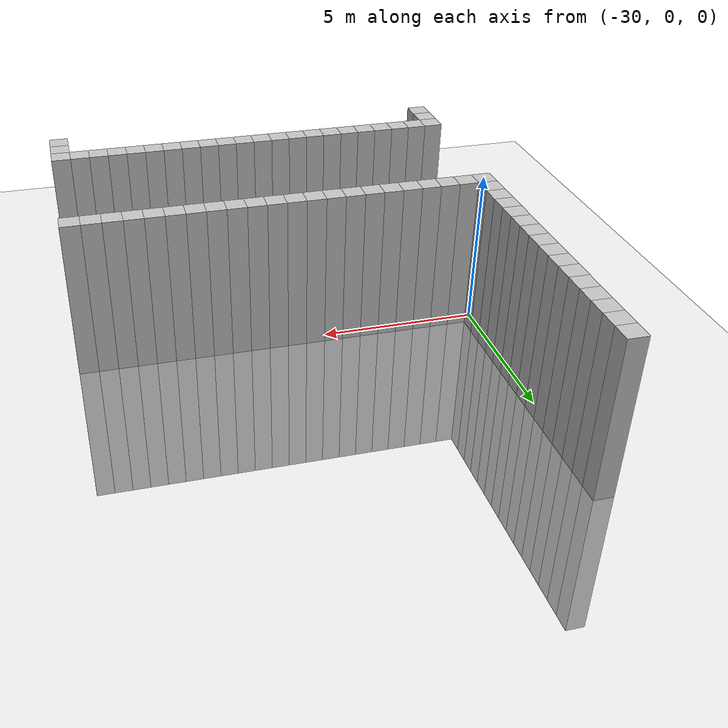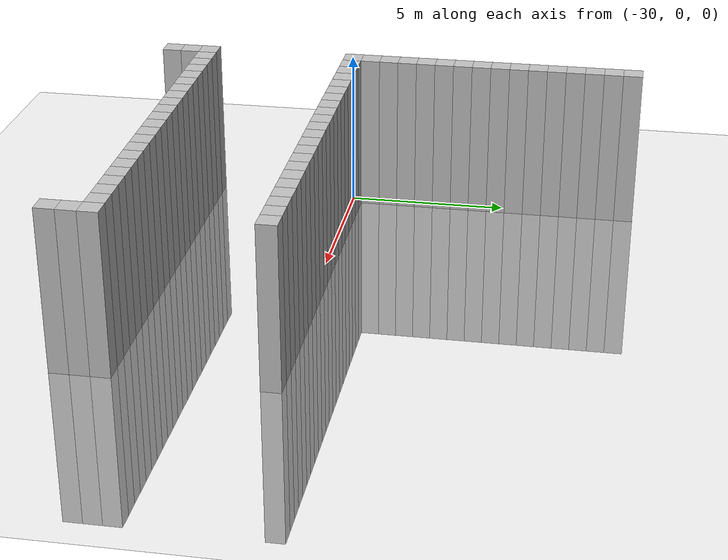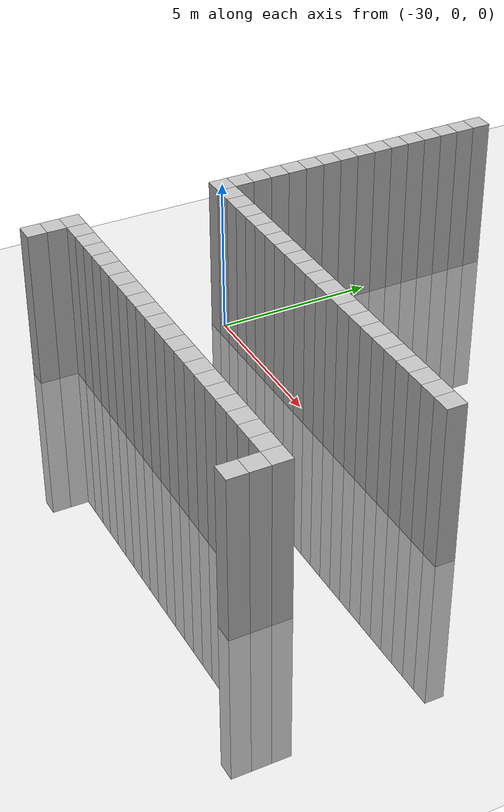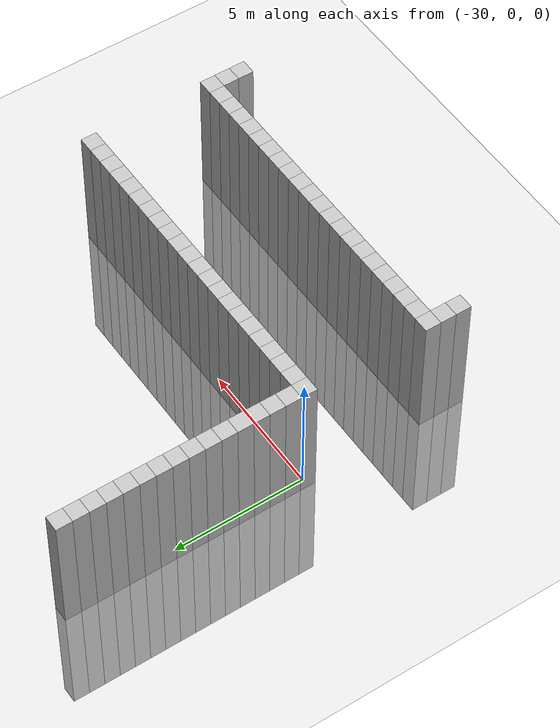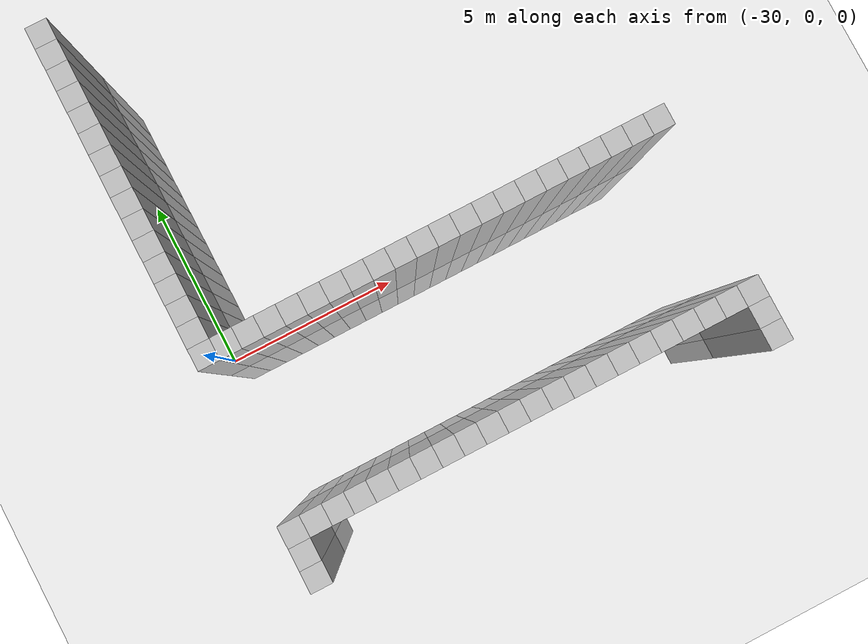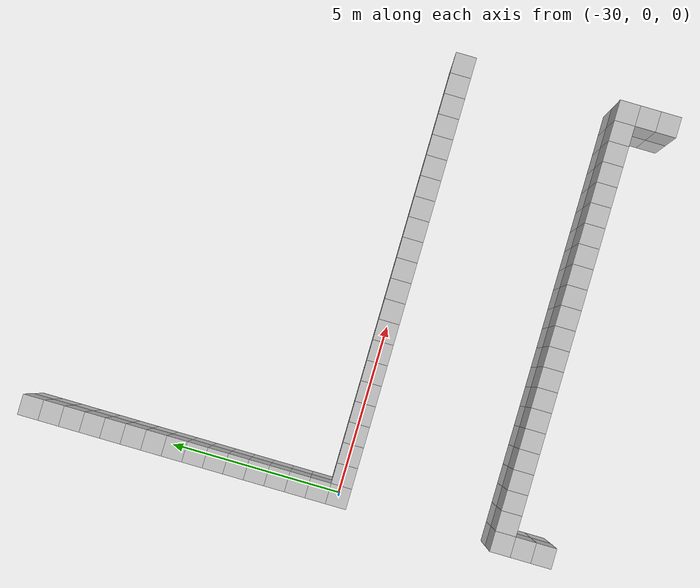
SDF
<sdf version="1.6">
 <world name="default">
  <model name="ground_plane">
   <static>1</static>
   <link name="link">
    <collision name="collision">
     <geometry><plane><normal>0 0 1</normal><size>100 100</size></plane></geometry>
     <surface><friction><ode><mu>100</mu><mu2>50</mu2></ode></friction></surface>
    </collision>
    <visual name="visual">
     <cast_shadows>0</cast_shadows>
     <geometry><plane><normal>0 0 1</normal><size>100 100</size></plane></geometry>
     <material>
      <script><uri>file://media/materials/scripts/gazebo.material</uri><name>Gazebo/Grey</name></script>
     </material>
    </visual>
   </link>
  </model>
  <model name="unit_cylinder_333">
   <static>1</static>
   <pose>-30 0 0 0 -0 0</pose>
   <link name="link">
    <inertial>
     <mass>1</mass>
     <inertia><ixx>0.145833</ixx><ixy>0</ixy><ixz>0</ixz><iyy>0.145833</iyy><iyz>0</iyz><izz>0.125</izz></inertia>
    </inertial>
    <collision name="collision"><geometry><box><size>0.6 0.6 10</size></box></geometry></collision>
    <visual name="visual">
     <geometry><box><size>0.6 0.6 10</size></box></geometry>
     <material><ambient>0.753 0.753 0.753 1</ambient><diffuse>0.753 0.753 0.753 1</diffuse></material>
     <material>
      <script><name>Gazebo/Grey</name><uri>file://media/materials/scripts/gazebo.material</uri></script>
     </material>
    </visual>
   </link>
  </model>
  <model name="unit_cylinder_334">
   <static>1</static>
   <pose>-30 0.6 0 0 -0 0</pose>
   <link name="link">
    <inertial>
     <mass>1</mass>
     <inertia><ixx>0.145833</ixx><ixy>0</ixy><ixz>0</ixz><iyy>0.145833</iyy><iyz>0</iyz><izz>0.125</izz></inertia>
    </inertial>
    <collision name="collision"><geometry><box><size>0.6 0.6 10</size></box></geometry></collision>
    <visual name="visual">
     <geometry><box><size>0.6 0.6 10</size></box></geometry>
     <material><ambient>0.753 0.753 0.753 1</ambient><diffuse>0.753 0.753 0.753 1</diffuse></material>
     <material>
      <script><name>Gazebo/Grey</name><uri>file://media/materials/scripts/gazebo.material</uri></script>
     </material>
    </visual>
   </link>
  </model>
  <model name="unit_cylinder_335">
   <static>1</static>
   <pose>-30 1.2 0 0 -0 0</pose>
   <link name="link">
    <inertial>
     <mass>1</mass>
     <inertia><ixx>0.145833</ixx><ixy>0</ixy><ixz>0</ixz><iyy>0.145833</iyy><iyz>0</iyz><izz>0.125</izz></inertia>
    </inertial>
    <collision name="collision"><geometry><box><size>0.6 0.6 10</size></box></geometry></collision>
    <visual name="visual">
     <geometry><box><size>0.6 0.6 10</size></box></geometry>
     <material><ambient>0.753 0.753 0.753 1</ambient><diffuse>0.753 0.753 0.753 1</diffuse></material>
     <material>
      <script><name>Gazebo/Grey</name><uri>file://media/materials/scripts/gazebo.material</uri></script>
     </material>
    </visual>
   </link>
  </model>
  <model name="unit_cylinder_336">
   <static>1</static>
   <pose>-30 1.8 0 0 -0 0</pose>
   <link name="link">
    <inertial>
     <mass>1</mass>
     <inertia><ixx>0.145833</ixx><ixy>0</ixy><ixz>0</ixz><iyy>0.145833</iyy><iyz>0</iyz><izz>0.125</izz></inertia>
    </inertial>
    <collision name="collision"><geometry><box><size>0.6 0.6 10</size></box></geometry></collision>
    <visual name="visual">
     <geometry><box><size>0.6 0.6 10</size></box></geometry>
     <material><ambient>0.753 0.753 0.753 1</ambient><diffuse>0.753 0.753 0.753 1</diffuse></material>
     <material>
      <script><name>Gazebo/Grey</name><uri>file://media/materials/scripts/gazebo.material</uri></script>
     </material>
    </visual>
   </link>
  </model>
  <model name="unit_cylinder_337">
   <static>1</static>
   <pose>-30 2.4 0 0 -0 0</pose>
   <link name="link">
    <inertial>
     <mass>1</mass>
     <inertia><ixx>0.145833</ixx><ixy>0</ixy><ixz>0</ixz><iyy>0.145833</iyy><iyz>0</iyz><izz>0.125</izz></inertia>
    </inertial>
    <collision name="collision"><geometry><box><size>0.6 0.6 10</size></box></geometry></collision>
    <visual name="visual">
     <geometry><box><size>0.6 0.6 10</size></box></geometry>
     <material><ambient>0.753 0.753 0.753 1</ambient><diffuse>0.753 0.753 0.753 1</diffuse></material>
     <material>
      <script><name>Gazebo/Grey</name><uri>file://media/materials/scripts/gazebo.material</uri></script>
     </material>
    </visual>
   </link>
  </model>
  <model name="unit_cylinder_338">
   <static>1</static>
   <pose>-30 3 0 0 -0 0</pose>
   <link name="link">
    <inertial>
     <mass>1</mass>
     <inertia><ixx>0.145833</ixx><ixy>0</ixy><ixz>0</ixz><iyy>0.145833</iyy><iyz>0</iyz><izz>0.125</izz></inertia>
    </inertial>
    <collision name="collision"><geometry><box><size>0.6 0.6 10</size></box></geometry></collision>
    <visual name="visual">
     <geometry><box><size>0.6 0.6 10</size></box></geometry>
     <material><ambient>0.753 0.753 0.753 1</ambient><diffuse>0.753 0.753 0.753 1</diffuse></material>
     <material>
      <script><name>Gazebo/Grey</name><uri>file://media/materials/scripts/gazebo.material</uri></script>
     </material>
    </visual>
   </link>
  </model>
  <model name="unit_cylinder_339">
   <static>1</static>
   <pose>-30 3.6 0 0 -0 0</pose>
   <link name="link">
    <inertial>
     <mass>1</mass>
     <inertia><ixx>0.145833</ixx><ixy>0</ixy><ixz>0</ixz><iyy>0.145833</iyy><iyz>0</iyz><izz>0.125</izz></inertia>
    </inertial>
    <collision name="collision"><geometry><box><size>0.6 0.6 10</size></box></geometry></collision>
    <visual name="visual">
     <geometry><box><size>0.6 0.6 10</size></box></geometry>
     <material><ambient>0.753 0.753 0.753 1</ambient><diffuse>0.753 0.753 0.753 1</diffuse></material>
     <material>
      <script><name>Gazebo/Grey</name><uri>file://media/materials/scripts/gazebo.material</uri></script>
     </material>
    </visual>
   </link>
  </model>
  <model name="unit_cylinder_340">
   <static>1</static>
   <pose>-30 4.2 0 0 -0 0</pose>
   <link name="link">
    <inertial>
     <mass>1</mass>
     <inertia><ixx>0.145833</ixx><ixy>0</ixy><ixz>0</ixz><iyy>0.145833</iyy><iyz>0</iyz><izz>0.125</izz></inertia>
    </inertial>
    <collision name="collision"><geometry><box><size>0.6 0.6 10</size></box></geometry></collision>
    <visual name="visual">
     <geometry><box><size>0.6 0.6 10</size></box></geometry>
     <material><ambient>0.753 0.753 0.753 1</ambient><diffuse>0.753 0.753 0.753 1</diffuse></material>
     <material>
      <script><name>Gazebo/Grey</name><uri>file://media/materials/scripts/gazebo.material</uri></script>
     </material>
    </visual>
   </link>
  </model>
  <model name="unit_cylinder_341">
   <static>1</static>
   <pose>-30 4.8 0 0 -0 0</pose>
   <link name="link">
    <inertial>
     <mass>1</mass>
     <inertia><ixx>0.145833</ixx><ixy>0</ixy><ixz>0</ixz><iyy>0.145833</iyy><iyz>0</iyz><izz>0.125</izz></inertia>
    </inertial>
    <collision name="collision"><geometry><box><size>0.6 0.6 10</size></box></geometry></collision>
    <visual name="visual">
     <geometry><box><size>0.6 0.6 10</size></box></geometry>
     <material><ambient>0.753 0.753 0.753 1</ambient><diffuse>0.753 0.753 0.753 1</diffuse></material>
     <material>
      <script><name>Gazebo/Grey</name><uri>file://media/materials/scripts/gazebo.material</uri></script>
     </material>
    </visual>
   </link>
  </model>
  <model name="unit_cylinder_342">
   <static>1</static>
   <pose>-30 5.4 0 0 -0 0</pose>
   <link name="link">
    <inertial>
     <mass>1</mass>
     <inertia><ixx>0.145833</ixx><ixy>0</ixy><ixz>0</ixz><iyy>0.145833</iyy><iyz>0</iyz><izz>0.125</izz></inertia>
    </inertial>
    <collision name="collision"><geometry><box><size>0.6 0.6 10</size></box></geometry></collision>
    <visual name="visual">
     <geometry><box><size>0.6 0.6 10</size></box></geometry>
     <material><ambient>0.753 0.753 0.753 1</ambient><diffuse>0.753 0.753 0.753 1</diffuse></material>
     <material>
      <script><name>Gazebo/Grey</name><uri>file://media/materials/scripts/gazebo.material</uri></script>
     </material>
    </visual>
   </link>
  </model>
  <model name="unit_cylinder_343">
   <static>1</static>
   <pose>-30 6 0 0 -0 0</pose>
   <link name="link">
    <inertial>
     <mass>1</mass>
     <inertia><ixx>0.145833</ixx><ixy>0</ixy><ixz>0</ixz><iyy>0.145833</iyy><iyz>0</iyz><izz>0.125</izz></inertia>
    </inertial>
    <collision name="collision"><geometry><box><size>0.6 0.6 10</size></box></geometry></collision>
    <visual name="visual">
     <geometry><box><size>0.6 0.6 10</size></box></geometry>
     <material><ambient>0.753 0.753 0.753 1</ambient><diffuse>0.753 0.753 0.753 1</diffuse></material>
     <material>
      <script><name>Gazebo/Grey</name><uri>file://media/materials/scripts/gazebo.material</uri></script>
     </material>
    </visual>
   </link>
  </model>
  <model name="unit_cylinder_344">
   <static>1</static>
   <pose>-30 6.6 0 0 -0 0</pose>
   <link name="link">
    <inertial>
     <mass>1</mass>
     <inertia><ixx>0.145833</ixx><ixy>0</ixy><ixz>0</ixz><iyy>0.145833</iyy><iyz>0</iyz><izz>0.125</izz></inertia>
    </inertial>
    <collision name="collision"><geometry><box><size>0.6 0.6 10</size></box></geometry></collision>
    <visual name="visual">
     <geometry><box><size>0.6 0.6 10</size></box></geometry>
     <material><ambient>0.753 0.753 0.753 1</ambient><diffuse>0.753 0.753 0.753 1</diffuse></material>
     <material>
      <script><name>Gazebo/Grey</name><uri>file://media/materials/scripts/gazebo.material</uri></script>
     </material>
    </visual>
   </link>
  </model>
  <model name="unit_cylinder_345">
   <static>1</static>
   <pose>-30 7.2 0 0 -0 0</pose>
   <link name="link">
    <inertial>
     <mass>1</mass>
     <inertia><ixx>0.145833</ixx><ixy>0</ixy><ixz>0</ixz><iyy>0.145833</iyy><iyz>0</iyz><izz>0.125</izz></inertia>
    </inertial>
    <collision name="collision"><geometry><box><size>0.6 0.6 10</size></box></geometry></collision>
    <visual name="visual">
     <geometry><box><size>0.6 0.6 10</size></box></geometry>
     <material><ambient>0.753 0.753 0.753 1</ambient><diffuse>0.753 0.753 0.753 1</diffuse></material>
     <material>
      <script><name>Gazebo/Grey</name><uri>file://media/materials/scripts/gazebo.material</uri></script>
     </material>
    </visual>
   </link>
  </model>
  <model name="unit_cylinder_346">
   <static>1</static>
   <pose>-30 7.8 0 0 -0 0</pose>
   <link name="link">
    <inertial>
     <mass>1</mass>
     <inertia><ixx>0.145833</ixx><ixy>0</ixy><ixz>0</ixz><iyy>0.145833</iyy><iyz>0</iyz><izz>0.125</izz></inertia>
    </inertial>
    <collision name="collision"><geometry><box><size>0.6 0.6 10</size></box></geometry></collision>
    <visual name="visual">
     <geometry><box><size>0.6 0.6 10</size></box></geometry>
     <material><ambient>0.753 0.753 0.753 1</ambient><diffuse>0.753 0.753 0.753 1</diffuse></material>
     <material>
      <script><name>Gazebo/Grey</name><uri>file://media/materials/scripts/gazebo.material</uri></script>
     </material>
    </visual>
   </link>
  </model>
  <model name="unit_cylinder_347">
   <static>1</static>
   <pose>-30 8.4 0 0 -0 0</pose>
   <link name="link">
    <inertial>
     <mass>1</mass>
     <inertia><ixx>0.145833</ixx><ixy>0</ixy><ixz>0</ixz><iyy>0.145833</iyy><iyz>0</iyz><izz>0.125</izz></inertia>
    </inertial>
    <collision name="collision"><geometry><box><size>0.6 0.6 10</size></box></geometry></collision>
    <visual name="visual">
     <geometry><box><size>0.6 0.6 10</size></box></geometry>
     <material><ambient>0.753 0.753 0.753 1</ambient><diffuse>0.753 0.753 0.753 1</diffuse></material>
     <material>
      <script><name>Gazebo/Grey</name><uri>file://media/materials/scripts/gazebo.material</uri></script>
     </material>
    </visual>
   </link>
  </model>
  <model name="unit_cylinder_348">
   <static>1</static>
   <pose>-30 9 0 0 -0 0</pose>
   <link name="link">
    <inertial>
     <mass>1</mass>
     <inertia><ixx>0.145833</ixx><ixy>0</ixy><ixz>0</ixz><iyy>0.145833</iyy><iyz>0</iyz><izz>0.125</izz></inertia>
    </inertial>
    <collision name="collision"><geometry><box><size>0.6 0.6 10</size></box></geometry></collision>
    <visual name="visual">
     <geometry><box><size>0.6 0.6 10</size></box></geometry>
     <material><ambient>0.753 0.753 0.753 1</ambient><diffuse>0.753 0.753 0.753 1</diffuse></material>
     <material>
      <script><name>Gazebo/Grey</name><uri>file://media/materials/scripts/gazebo.material</uri></script>
     </material>
    </visual>
   </link>
  </model>
  <model name="unit_cylinder_397">
   <static>1</static>
   <pose>-29.4 0 0 0 -0 0</pose>
   <link name="link">
    <inertial>
     <mass>1</mass>
     <inertia><ixx>0.145833</ixx><ixy>0</ixy><ixz>0</ixz><iyy>0.145833</iyy><iyz>0</iyz><izz>0.125</izz></inertia>
    </inertial>
    <collision name="collision"><geometry><box><size>0.6 0.6 10</size></box></geometry></collision>
    <visual name="visual">
     <geometry><box><size>0.6 0.6 10</size></box></geometry>
     <material><ambient>0.753 0.753 0.753 1</ambient><diffuse>0.753 0.753 0.753 1</diffuse></material>
     <material>
      <script><name>Gazebo/Grey</name><uri>file://media/materials/scripts/gazebo.material</uri></script>
     </material>
    </visual>
   </link>
  </model>
  <model name="unit_cylinder_401">
   <static>1</static>
   <pose>-28.8 0 0 0 -0 0</pose>
   <link name="link">
    <inertial>
     <mass>1</mass>
     <inertia><ixx>0.145833</ixx><ixy>0</ixy><ixz>0</ixz><iyy>0.145833</iyy><iyz>0</iyz><izz>0.125</izz></inertia>
    </inertial>
    <collision name="collision"><geometry><box><size>0.6 0.6 10</size></box></geometry></collision>
    <visual name="visual">
     <geometry><box><size>0.6 0.6 10</size></box></geometry>
     <material><ambient>0.753 0.753 0.753 1</ambient><diffuse>0.753 0.753 0.753 1</diffuse></material>
     <material>
      <script><name>Gazebo/Grey</name><uri>file://media/materials/scripts/gazebo.material</uri></script>
     </material>
    </visual>
   </link>
  </model>
  <model name="unit_cylinder_405">
   <static>1</static>
   <pose>-28.2 0 0 0 -0 0</pose>
   <link name="link">
    <inertial>
     <mass>1</mass>
     <inertia><ixx>0.145833</ixx><ixy>0</ixy><ixz>0</ixz><iyy>0.145833</iyy><iyz>0</iyz><izz>0.125</izz></inertia>
    </inertial>
    <collision name="collision"><geometry><box><size>0.6 0.6 10</size></box></geometry></collision>
    <visual name="visual">
     <geometry><box><size>0.6 0.6 10</size></box></geometry>
     <material><ambient>0.753 0.753 0.753 1</ambient><diffuse>0.753 0.753 0.753 1</diffuse></material>
     <material>
      <script><name>Gazebo/Grey</name><uri>file://media/materials/scripts/gazebo.material</uri></script>
     </material>
    </visual>
   </link>
  </model>
  <model name="unit_cylinder_409">
   <static>1</static>
   <pose>-27.6 0 0 0 -0 0</pose>
   <link name="link">
    <inertial>
     <mass>1</mass>
     <inertia><ixx>0.145833</ixx><ixy>0</ixy><ixz>0</ixz><iyy>0.145833</iyy><iyz>0</iyz><izz>0.125</izz></inertia>
    </inertial>
    <collision name="collision"><geometry><box><size>0.6 0.6 10</size></box></geometry></collision>
    <visual name="visual">
     <geometry><box><size>0.6 0.6 10</size></box></geometry>
     <material><ambient>0.753 0.753 0.753 1</ambient><diffuse>0.753 0.753 0.753 1</diffuse></material>
     <material>
      <script><name>Gazebo/Grey</name><uri>file://media/materials/scripts/gazebo.material</uri></script>
     </material>
    </visual>
   </link>
  </model>
  <model name="unit_cylinder_413">
   <static>1</static>
   <pose>-27 0 0 0 -0 0</pose>
   <link name="link">
    <inertial>
     <mass>1</mass>
     <inertia><ixx>0.145833</ixx><ixy>0</ixy><ixz>0</ixz><iyy>0.145833</iyy><iyz>0</iyz><izz>0.125</izz></inertia>
    </inertial>
    <collision name="collision"><geometry><box><size>0.6 0.6 10</size></box></geometry></collision>
    <visual name="visual">
     <geometry><box><size>0.6 0.6 10</size></box></geometry>
     <material><ambient>0.753 0.753 0.753 1</ambient><diffuse>0.753 0.753 0.753 1</diffuse></material>
     <material>
      <script><name>Gazebo/Grey</name><uri>file://media/materials/scripts/gazebo.material</uri></script>
     </material>
    </visual>
   </link>
  </model>
  <model name="unit_cylinder_417">
   <static>1</static>
   <pose>-26.4 0 0 0 -0 0</pose>
   <link name="link">
    <inertial>
     <mass>1</mass>
     <inertia><ixx>0.145833</ixx><ixy>0</ixy><ixz>0</ixz><iyy>0.145833</iyy><iyz>0</iyz><izz>0.125</izz></inertia>
    </inertial>
    <collision name="collision"><geometry><box><size>0.6 0.6 10</size></box></geometry></collision>
    <visual name="visual">
     <geometry><box><size>0.6 0.6 10</size></box></geometry>
     <material><ambient>0.753 0.753 0.753 1</ambient><diffuse>0.753 0.753 0.753 1</diffuse></material>
     <material>
      <script><name>Gazebo/Grey</name><uri>file://media/materials/scripts/gazebo.material</uri></script>
     </material>
    </visual>
   </link>
  </model>
  <model name="unit_cylinder_421">
   <static>1</static>
   <pose>-25.8 0 0 0 -0 0</pose>
   <link name="link">
    <inertial>
     <mass>1</mass>
     <inertia><ixx>0.145833</ixx><ixy>0</ixy><ixz>0</ixz><iyy>0.145833</iyy><iyz>0</iyz><izz>0.125</izz></inertia>
    </inertial>
    <collision name="collision"><geometry><box><size>0.6 0.6 10</size></box></geometry></collision>
    <visual name="visual">
     <geometry><box><size>0.6 0.6 10</size></box></geometry>
     <material><ambient>0.753 0.753 0.753 1</ambient><diffuse>0.753 0.753 0.753 1</diffuse></material>
     <material>
      <script><name>Gazebo/Grey</name><uri>file://media/materials/scripts/gazebo.material</uri></script>
     </material>
    </visual>
   </link>
  </model>
  <model name="unit_cylinder_425">
   <static>1</static>
   <pose>-25.2 0 0 0 -0 0</pose>
   <link name="link">
    <inertial>
     <mass>1</mass>
     <inertia><ixx>0.145833</ixx><ixy>0</ixy><ixz>0</ixz><iyy>0.145833</iyy><iyz>0</iyz><izz>0.125</izz></inertia>
    </inertial>
    <collision name="collision"><geometry><box><size>0.6 0.6 10</size></box></geometry></collision>
    <visual name="visual">
     <geometry><box><size>0.6 0.6 10</size></box></geometry>
     <material><ambient>0.753 0.753 0.753 1</ambient><diffuse>0.753 0.753 0.753 1</diffuse></material>
     <material>
      <script><name>Gazebo/Grey</name><uri>file://media/materials/scripts/gazebo.material</uri></script>
     </material>
    </visual>
   </link>
  </model>
  <model name="unit_cylinder_429">
   <static>1</static>
   <pose>-24.6 0 0 0 -0 0</pose>
   <link name="link">
    <inertial>
     <mass>1</mass>
     <inertia><ixx>0.145833</ixx><ixy>0</ixy><ixz>0</ixz><iyy>0.145833</iyy><iyz>0</iyz><izz>0.125</izz></inertia>
    </inertial>
    <collision name="collision"><geometry><box><size>0.6 0.6 10</size></box></geometry></collision>
    <visual name="visual">
     <geometry><box><size>0.6 0.6 10</size></box></geometry>
     <material><ambient>0.753 0.753 0.753 1</ambient><diffuse>0.753 0.753 0.753 1</diffuse></material>
     <material>
      <script><name>Gazebo/Grey</name><uri>file://media/materials/scripts/gazebo.material</uri></script>
     </material>
    </visual>
   </link>
  </model>
  <model name="unit_cylinder_433">
   <static>1</static>
   <pose>-24 0 0 0 -0 0</pose>
   <link name="link">
    <inertial>
     <mass>1</mass>
     <inertia><ixx>0.145833</ixx><ixy>0</ixy><ixz>0</ixz><iyy>0.145833</iyy><iyz>0</iyz><izz>0.125</izz></inertia>
    </inertial>
    <collision name="collision"><geometry><box><size>0.6 0.6 10</size></box></geometry></collision>
    <visual name="visual">
     <geometry><box><size>0.6 0.6 10</size></box></geometry>
     <material><ambient>0.753 0.753 0.753 1</ambient><diffuse>0.753 0.753 0.753 1</diffuse></material>
     <material>
      <script><name>Gazebo/Grey</name><uri>file://media/materials/scripts/gazebo.material</uri></script>
     </material>
    </visual>
   </link>
  </model>
  <model name="unit_cylinder_437">
   <static>1</static>
   <pose>-23.4 0 0 0 -0 0</pose>
   <link name="link">
    <inertial>
     <mass>1</mass>
     <inertia><ixx>0.145833</ixx><ixy>0</ixy><ixz>0</ixz><iyy>0.145833</iyy><iyz>0</iyz><izz>0.125</izz></inertia>
    </inertial>
    <collision name="collision"><geometry><box><size>0.6 0.6 10</size></box></geometry></collision>
    <visual name="visual">
     <geometry><box><size>0.6 0.6 10</size></box></geometry>
     <material><ambient>0.753 0.753 0.753 1</ambient><diffuse>0.753 0.753 0.753 1</diffuse></material>
     <material>
      <script><name>Gazebo/Grey</name><uri>file://media/materials/scripts/gazebo.material</uri></script>
     </material>
    </visual>
   </link>
  </model>
  <model name="unit_cylinder_441">
   <static>1</static>
   <pose>-22.8 0 0 0 -0 0</pose>
   <link name="link">
    <inertial>
     <mass>1</mass>
     <inertia><ixx>0.145833</ixx><ixy>0</ixy><ixz>0</ixz><iyy>0.145833</iyy><iyz>0</iyz><izz>0.125</izz></inertia>
    </inertial>
    <collision name="collision"><geometry><box><size>0.6 0.6 10</size></box></geometry></collision>
    <visual name="visual">
     <geometry><box><size>0.6 0.6 10</size></box></geometry>
     <material><ambient>0.753 0.753 0.753 1</ambient><diffuse>0.753 0.753 0.753 1</diffuse></material>
     <material>
      <script><name>Gazebo/Grey</name><uri>file://media/materials/scripts/gazebo.material</uri></script>
     </material>
    </visual>
   </link>
  </model>
  <model name="unit_cylinder_445">
   <static>1</static>
   <pose>-22.2 0 0 0 -0 0</pose>
   <link name="link">
    <inertial>
     <mass>1</mass>
     <inertia><ixx>0.145833</ixx><ixy>0</ixy><ixz>0</ixz><iyy>0.145833</iyy><iyz>0</iyz><izz>0.125</izz></inertia>
    </inertial>
    <collision name="collision"><geometry><box><size>0.6 0.6 10</size></box></geometry></collision>
    <visual name="visual">
     <geometry><box><size>0.6 0.6 10</size></box></geometry>
     <material><ambient>0.753 0.753 0.753 1</ambient><diffuse>0.753 0.753 0.753 1</diffuse></material>
     <material>
      <script><name>Gazebo/Grey</name><uri>file://media/materials/scripts/gazebo.material</uri></script>
     </material>
    </visual>
   </link>
  </model>
  <model name="unit_cylinder_449">
   <static>1</static>
   <pose>-21.6 0 0 0 -0 0</pose>
   <link name="link">
    <inertial>
     <mass>1</mass>
     <inertia><ixx>0.145833</ixx><ixy>0</ixy><ixz>0</ixz><iyy>0.145833</iyy><iyz>0</iyz><izz>0.125</izz></inertia>
    </inertial>
    <collision name="collision"><geometry><box><size>0.6 0.6 10</size></box></geometry></collision>
    <visual name="visual">
     <geometry><box><size>0.6 0.6 10</size></box></geometry>
     <material><ambient>0.753 0.753 0.753 1</ambient><diffuse>0.753 0.753 0.753 1</diffuse></material>
     <material>
      <script><name>Gazebo/Grey</name><uri>file://media/materials/scripts/gazebo.material</uri></script>
     </material>
    </visual>
   </link>
  </model>
  <model name="unit_cylinder_453">
   <static>1</static>
   <pose>-21 0 0 0 -0 0</pose>
   <link name="link">
    <inertial>
     <mass>1</mass>
     <inertia><ixx>0.145833</ixx><ixy>0</ixy><ixz>0</ixz><iyy>0.145833</iyy><iyz>0</iyz><izz>0.125</izz></inertia>
    </inertial>
    <collision name="collision"><geometry><box><size>0.6 0.6 10</size></box></geometry></collision>
    <visual name="visual">
     <geometry><box><size>0.6 0.6 10</size></box></geometry>
     <material><ambient>0.753 0.753 0.753 1</ambient><diffuse>0.753 0.753 0.753 1</diffuse></material>
     <material>
      <script><name>Gazebo/Grey</name><uri>file://media/materials/scripts/gazebo.material</uri></script>
     </material>
    </visual>
   </link>
  </model>
  <model name="unit_cylinder_457">
   <static>1</static>
   <pose>-20.4 0 0 0 -0 0</pose>
   <link name="link">
    <inertial>
     <mass>1</mass>
     <inertia><ixx>0.145833</ixx><ixy>0</ixy><ixz>0</ixz><iyy>0.145833</iyy><iyz>0</iyz><izz>0.125</izz></inertia>
    </inertial>
    <collision name="collision"><geometry><box><size>0.6 0.6 10</size></box></geometry></collision>
    <visual name="visual">
     <geometry><box><size>0.6 0.6 10</size></box></geometry>
     <material><ambient>0.753 0.753 0.753 1</ambient><diffuse>0.753 0.753 0.753 1</diffuse></material>
     <material>
      <script><name>Gazebo/Grey</name><uri>file://media/materials/scripts/gazebo.material</uri></script>
     </material>
    </visual>
   </link>
  </model>
  <model name="unit_cylinder_461">
   <static>1</static>
   <pose>-19.8 0 0 0 -0 0</pose>
   <link name="link">
    <inertial>
     <mass>1</mass>
     <inertia><ixx>0.145833</ixx><ixy>0</ixy><ixz>0</ixz><iyy>0.145833</iyy><iyz>0</iyz><izz>0.125</izz></inertia>
    </inertial>
    <collision name="collision"><geometry><box><size>0.6 0.6 10</size></box></geometry></collision>
    <visual name="visual">
     <geometry><box><size>0.6 0.6 10</size></box></geometry>
     <material><ambient>0.753 0.753 0.753 1</ambient><diffuse>0.753 0.753 0.753 1</diffuse></material>
     <material>
      <script><name>Gazebo/Grey</name><uri>file://media/materials/scripts/gazebo.material</uri></script>
     </material>
    </visual>
   </link>
  </model>
  <model name="unit_cylinder_465">
   <static>1</static>
   <pose>-19.2 0 0 0 -0 0</pose>
   <link name="link">
    <inertial>
     <mass>1</mass>
     <inertia><ixx>0.145833</ixx><ixy>0</ixy><ixz>0</ixz><iyy>0.145833</iyy><iyz>0</iyz><izz>0.125</izz></inertia>
    </inertial>
    <collision name="collision"><geometry><box><size>0.6 0.6 10</size></box></geometry></collision>
    <visual name="visual">
     <geometry><box><size>0.6 0.6 10</size></box></geometry>
     <material><ambient>0.753 0.753 0.753 1</ambient><diffuse>0.753 0.753 0.753 1</diffuse></material>
     <material>
      <script><name>Gazebo/Grey</name><uri>file://media/materials/scripts/gazebo.material</uri></script>
     </material>
    </visual>
   </link>
  </model>
  <model name="unit_cylinder_469">
   <static>1</static>
   <pose>-18.6 0 0 0 -0 0</pose>
   <link name="link">
    <inertial>
     <mass>1</mass>
     <inertia><ixx>0.145833</ixx><ixy>0</ixy><ixz>0</ixz><iyy>0.145833</iyy><iyz>0</iyz><izz>0.125</izz></inertia>
    </inertial>
    <collision name="collision"><geometry><box><size>0.6 0.6 10</size></box></geometry></collision>
    <visual name="visual">
     <geometry><box><size>0.6 0.6 10</size></box></geometry>
     <material><ambient>0.753 0.753 0.753 1</ambient><diffuse>0.753 0.753 0.753 1</diffuse></material>
     <material>
      <script><name>Gazebo/Grey</name><uri>file://media/materials/scripts/gazebo.material</uri></script>
     </material>
    </visual>
   </link>
  </model>
  <model name="unit_cylinder_473">
   <static>1</static>
   <pose>-18 0 0 0 -0 0</pose>
   <link name="link">
    <inertial>
     <mass>1</mass>
     <inertia><ixx>0.145833</ixx><ixy>0</ixy><ixz>0</ixz><iyy>0.145833</iyy><iyz>0</iyz><izz>0.125</izz></inertia>
    </inertial>
    <collision name="collision"><geometry><box><size>0.6 0.6 10</size></box></geometry></collision>
    <visual name="visual">
     <geometry><box><size>0.6 0.6 10</size></box></geometry>
     <material><ambient>0.753 0.753 0.753 1</ambient><diffuse>0.753 0.753 0.753 1</diffuse></material>
     <material>
      <script><name>Gazebo/Grey</name><uri>file://media/materials/scripts/gazebo.material</uri></script>
     </material>
    </visual>
   </link>
  </model>
  <model name="unit_cylinder_477">
   <static>1</static>
   <pose>-17.4 0 0 0 -0 0</pose>
   <link name="link">
    <inertial>
     <mass>1</mass>
     <inertia><ixx>0.145833</ixx><ixy>0</ixy><ixz>0</ixz><iyy>0.145833</iyy><iyz>0</iyz><izz>0.125</izz></inertia>
    </inertial>
    <collision name="collision"><geometry><box><size>0.6 0.6 10</size></box></geometry></collision>
    <visual name="visual">
     <geometry><box><size>0.6 0.6 10</size></box></geometry>
     <material><ambient>0.753 0.753 0.753 1</ambient><diffuse>0.753 0.753 0.753 1</diffuse></material>
     <material>
      <script><name>Gazebo/Grey</name><uri>file://media/materials/scripts/gazebo.material</uri></script>
     </material>
    </visual>
   </link>
  </model>
  <model name="unit_cylinder_581">
   <static>1</static>
   <pose>-30 -6 0 0 -0 0</pose>
   <link name="link">
    <inertial>
     <mass>1</mass>
     <inertia><ixx>0.145833</ixx><ixy>0</ixy><ixz>0</ixz><iyy>0.145833</iyy><iyz>0</iyz><izz>0.125</izz></inertia>
    </inertial>
    <collision name="collision"><geometry><box><size>0.6 0.6 10</size></box></geometry></collision>
    <visual name="visual">
     <geometry><box><size>0.6 0.6 10</size></box></geometry>
     <material><ambient>0.753 0.753 0.753 1</ambient><diffuse>0.753 0.753 0.753 1</diffuse></material>
     <material>
      <script><name>Gazebo/Grey</name><uri>file://media/materials/scripts/gazebo.material</uri></script>
     </material>
    </visual>
   </link>
  </model>
  <model name="unit_cylinder_582">
   <static>1</static>
   <pose>-30 -5.4 0 0 -0 0</pose>
   <link name="link">
    <inertial>
     <mass>1</mass>
     <inertia><ixx>0.145833</ixx><ixy>0</ixy><ixz>0</ixz><iyy>0.145833</iyy><iyz>0</iyz><izz>0.125</izz></inertia>
    </inertial>
    <collision name="collision"><geometry><box><size>0.6 0.6 10</size></box></geometry></collision>
    <visual name="visual">
     <geometry><box><size>0.6 0.6 10</size></box></geometry>
     <material><ambient>0.753 0.753 0.753 1</ambient><diffuse>0.753 0.753 0.753 1</diffuse></material>
     <material>
      <script><name>Gazebo/Grey</name><uri>file://media/materials/scripts/gazebo.material</uri></script>
     </material>
    </visual>
   </link>
  </model>
  <model name="unit_cylinder_583">
   <static>1</static>
   <pose>-30 -4.8 0 0 -0 0</pose>
   <link name="link">
    <inertial>
     <mass>1</mass>
     <inertia><ixx>0.145833</ixx><ixy>0</ixy><ixz>0</ixz><iyy>0.145833</iyy><iyz>0</iyz><izz>0.125</izz></inertia>
    </inertial>
    <collision name="collision"><geometry><box><size>0.6 0.6 10</size></box></geometry></collision>
    <visual name="visual">
     <geometry><box><size>0.6 0.6 10</size></box></geometry>
     <material><ambient>0.753 0.753 0.753 1</ambient><diffuse>0.753 0.753 0.753 1</diffuse></material>
     <material>
      <script><name>Gazebo/Grey</name><uri>file://media/materials/scripts/gazebo.material</uri></script>
     </material>
    </visual>
   </link>
  </model>
  <model name="unit_cylinder_586">
   <static>1</static>
   <pose>-29.4 -4.8 0 0 -0 0</pose>
   <link name="link">
    <inertial>
     <mass>1</mass>
     <inertia><ixx>0.145833</ixx><ixy>0</ixy><ixz>0</ixz><iyy>0.145833</iyy><iyz>0</iyz><izz>0.125</izz></inertia>
    </inertial>
    <collision name="collision"><geometry><box><size>0.6 0.6 10</size></box></geometry></collision>
    <visual name="visual">
     <geometry><box><size>0.6 0.6 10</size></box></geometry>
     <material><ambient>0.753 0.753 0.753 1</ambient><diffuse>0.753 0.753 0.753 1</diffuse></material>
     <material>
      <script><name>Gazebo/Grey</name><uri>file://media/materials/scripts/gazebo.material</uri></script>
     </material>
    </visual>
   </link>
  </model>
  <model name="unit_cylinder_589">
   <static>1</static>
   <pose>-28.8 -4.8 0 0 -0 0</pose>
   <link name="link">
    <inertial>
     <mass>1</mass>
     <inertia><ixx>0.145833</ixx><ixy>0</ixy><ixz>0</ixz><iyy>0.145833</iyy><iyz>0</iyz><izz>0.125</izz></inertia>
    </inertial>
    <collision name="collision"><geometry><box><size>0.6 0.6 10</size></box></geometry></collision>
    <visual name="visual">
     <geometry><box><size>0.6 0.6 10</size></box></geometry>
     <material><ambient>0.753 0.753 0.753 1</ambient><diffuse>0.753 0.753 0.753 1</diffuse></material>
     <material>
      <script><name>Gazebo/Grey</name><uri>file://media/materials/scripts/gazebo.material</uri></script>
     </material>
    </visual>
   </link>
  </model>
  <model name="unit_cylinder_592">
   <static>1</static>
   <pose>-28.2 -4.8 0 0 -0 0</pose>
   <link name="link">
    <inertial>
     <mass>1</mass>
     <inertia><ixx>0.145833</ixx><ixy>0</ixy><ixz>0</ixz><iyy>0.145833</iyy><iyz>0</iyz><izz>0.125</izz></inertia>
    </inertial>
    <collision name="collision"><geometry><box><size>0.6 0.6 10</size></box></geometry></collision>
    <visual name="visual">
     <geometry><box><size>0.6 0.6 10</size></box></geometry>
     <material><ambient>0.753 0.753 0.753 1</ambient><diffuse>0.753 0.753 0.753 1</diffuse></material>
     <material>
      <script><name>Gazebo/Grey</name><uri>file://media/materials/scripts/gazebo.material</uri></script>
     </material>
    </visual>
   </link>
  </model>
  <model name="unit_cylinder_595">
   <static>1</static>
   <pose>-27.6 -4.8 0 0 -0 0</pose>
   <link name="link">
    <inertial>
     <mass>1</mass>
     <inertia><ixx>0.145833</ixx><ixy>0</ixy><ixz>0</ixz><iyy>0.145833</iyy><iyz>0</iyz><izz>0.125</izz></inertia>
    </inertial>
    <collision name="collision"><geometry><box><size>0.6 0.6 10</size></box></geometry></collision>
    <visual name="visual">
     <geometry><box><size>0.6 0.6 10</size></box></geometry>
     <material><ambient>0.753 0.753 0.753 1</ambient><diffuse>0.753 0.753 0.753 1</diffuse></material>
     <material>
      <script><name>Gazebo/Grey</name><uri>file://media/materials/scripts/gazebo.material</uri></script>
     </material>
    </visual>
   </link>
  </model>
  <model name="unit_cylinder_598">
   <static>1</static>
   <pose>-27 -4.8 0 0 -0 0</pose>
   <link name="link">
    <inertial>
     <mass>1</mass>
     <inertia><ixx>0.145833</ixx><ixy>0</ixy><ixz>0</ixz><iyy>0.145833</iyy><iyz>0</iyz><izz>0.125</izz></inertia>
    </inertial>
    <collision name="collision"><geometry><box><size>0.6 0.6 10</size></box></geometry></collision>
    <visual name="visual">
     <geometry><box><size>0.6 0.6 10</size></box></geometry>
     <material><ambient>0.753 0.753 0.753 1</ambient><diffuse>0.753 0.753 0.753 1</diffuse></material>
     <material>
      <script><name>Gazebo/Grey</name><uri>file://media/materials/scripts/gazebo.material</uri></script>
     </material>
    </visual>
   </link>
  </model>
  <model name="unit_cylinder_601">
   <static>1</static>
   <pose>-26.4 -4.8 0 0 -0 0</pose>
   <link name="link">
    <inertial>
     <mass>1</mass>
     <inertia><ixx>0.145833</ixx><ixy>0</ixy><ixz>0</ixz><iyy>0.145833</iyy><iyz>0</iyz><izz>0.125</izz></inertia>
    </inertial>
    <collision name="collision"><geometry><box><size>0.6 0.6 10</size></box></geometry></collision>
    <visual name="visual">
     <geometry><box><size>0.6 0.6 10</size></box></geometry>
     <material><ambient>0.753 0.753 0.753 1</ambient><diffuse>0.753 0.753 0.753 1</diffuse></material>
     <material>
      <script><name>Gazebo/Grey</name><uri>file://media/materials/scripts/gazebo.material</uri></script>
     </material>
    </visual>
   </link>
  </model>
  <model name="unit_cylinder_604">
   <static>1</static>
   <pose>-25.8 -4.8 0 0 -0 0</pose>
   <link name="link">
    <inertial>
     <mass>1</mass>
     <inertia><ixx>0.145833</ixx><ixy>0</ixy><ixz>0</ixz><iyy>0.145833</iyy><iyz>0</iyz><izz>0.125</izz></inertia>
    </inertial>
    <collision name="collision"><geometry><box><size>0.6 0.6 10</size></box></geometry></collision>
    <visual name="visual">
     <geometry><box><size>0.6 0.6 10</size></box></geometry>
     <material><ambient>0.753 0.753 0.753 1</ambient><diffuse>0.753 0.753 0.753 1</diffuse></material>
     <material>
      <script><name>Gazebo/Grey</name><uri>file://media/materials/scripts/gazebo.material</uri></script>
     </material>
    </visual>
   </link>
  </model>
  <model name="unit_cylinder_607">
   <static>1</static>
   <pose>-25.2 -4.8 0 0 -0 0</pose>
   <link name="link">
    <inertial>
     <mass>1</mass>
     <inertia><ixx>0.145833</ixx><ixy>0</ixy><ixz>0</ixz><iyy>0.145833</iyy><iyz>0</iyz><izz>0.125</izz></inertia>
    </inertial>
    <collision name="collision"><geometry><box><size>0.6 0.6 10</size></box></geometry></collision>
    <visual name="visual">
     <geometry><box><size>0.6 0.6 10</size></box></geometry>
     <material><ambient>0.753 0.753 0.753 1</ambient><diffuse>0.753 0.753 0.753 1</diffuse></material>
     <material>
      <script><name>Gazebo/Grey</name><uri>file://media/materials/scripts/gazebo.material</uri></script>
     </material>
    </visual>
   </link>
  </model>
  <model name="unit_cylinder_610">
   <static>1</static>
   <pose>-24.6 -4.8 0 0 -0 0</pose>
   <link name="link">
    <inertial>
     <mass>1</mass>
     <inertia><ixx>0.145833</ixx><ixy>0</ixy><ixz>0</ixz><iyy>0.145833</iyy><iyz>0</iyz><izz>0.125</izz></inertia>
    </inertial>
    <collision name="collision"><geometry><box><size>0.6 0.6 10</size></box></geometry></collision>
    <visual name="visual">
     <geometry><box><size>0.6 0.6 10</size></box></geometry>
     <material><ambient>0.753 0.753 0.753 1</ambient><diffuse>0.753 0.753 0.753 1</diffuse></material>
     <material>
      <script><name>Gazebo/Grey</name><uri>file://media/materials/scripts/gazebo.material</uri></script>
     </material>
    </visual>
   </link>
  </model>
  <model name="unit_cylinder_613">
   <static>1</static>
   <pose>-24 -4.8 0 0 -0 0</pose>
   <link name="link">
    <inertial>
     <mass>1</mass>
     <inertia><ixx>0.145833</ixx><ixy>0</ixy><ixz>0</ixz><iyy>0.145833</iyy><iyz>0</iyz><izz>0.125</izz></inertia>
    </inertial>
    <collision name="collision"><geometry><box><size>0.6 0.6 10</size></box></geometry></collision>
    <visual name="visual">
     <geometry><box><size>0.6 0.6 10</size></box></geometry>
     <material><ambient>0.753 0.753 0.753 1</ambient><diffuse>0.753 0.753 0.753 1</diffuse></material>
     <material>
      <script><name>Gazebo/Grey</name><uri>file://media/materials/scripts/gazebo.material</uri></script>
     </material>
    </visual>
   </link>
  </model>
  <model name="unit_cylinder_616">
   <static>1</static>
   <pose>-23.4 -4.8 0 0 -0 0</pose>
   <link name="link">
    <inertial>
     <mass>1</mass>
     <inertia><ixx>0.145833</ixx><ixy>0</ixy><ixz>0</ixz><iyy>0.145833</iyy><iyz>0</iyz><izz>0.125</izz></inertia>
    </inertial>
    <collision name="collision"><geometry><box><size>0.6 0.6 10</size></box></geometry></collision>
    <visual name="visual">
     <geometry><box><size>0.6 0.6 10</size></box></geometry>
     <material><ambient>0.753 0.753 0.753 1</ambient><diffuse>0.753 0.753 0.753 1</diffuse></material>
     <material>
      <script><name>Gazebo/Grey</name><uri>file://media/materials/scripts/gazebo.material</uri></script>
     </material>
    </visual>
   </link>
  </model>
  <model name="unit_cylinder_619">
   <static>1</static>
   <pose>-22.8 -4.8 0 0 -0 0</pose>
   <link name="link">
    <inertial>
     <mass>1</mass>
     <inertia><ixx>0.145833</ixx><ixy>0</ixy><ixz>0</ixz><iyy>0.145833</iyy><iyz>0</iyz><izz>0.125</izz></inertia>
    </inertial>
    <collision name="collision"><geometry><box><size>0.6 0.6 10</size></box></geometry></collision>
    <visual name="visual">
     <geometry><box><size>0.6 0.6 10</size></box></geometry>
     <material><ambient>0.753 0.753 0.753 1</ambient><diffuse>0.753 0.753 0.753 1</diffuse></material>
     <material>
      <script><name>Gazebo/Grey</name><uri>file://media/materials/scripts/gazebo.material</uri></script>
     </material>
    </visual>
   </link>
  </model>
  <model name="unit_cylinder_622">
   <static>1</static>
   <pose>-22.2 -4.8 0 0 -0 0</pose>
   <link name="link">
    <inertial>
     <mass>1</mass>
     <inertia><ixx>0.145833</ixx><ixy>0</ixy><ixz>0</ixz><iyy>0.145833</iyy><iyz>0</iyz><izz>0.125</izz></inertia>
    </inertial>
    <collision name="collision"><geometry><box><size>0.6 0.6 10</size></box></geometry></collision>
    <visual name="visual">
     <geometry><box><size>0.6 0.6 10</size></box></geometry>
     <material><ambient>0.753 0.753 0.753 1</ambient><diffuse>0.753 0.753 0.753 1</diffuse></material>
     <material>
      <script><name>Gazebo/Grey</name><uri>file://media/materials/scripts/gazebo.material</uri></script>
     </material>
    </visual>
   </link>
  </model>
  <model name="unit_cylinder_625">
   <static>1</static>
   <pose>-21.6 -4.8 0 0 -0 0</pose>
   <link name="link">
    <inertial>
     <mass>1</mass>
     <inertia><ixx>0.145833</ixx><ixy>0</ixy><ixz>0</ixz><iyy>0.145833</iyy><iyz>0</iyz><izz>0.125</izz></inertia>
    </inertial>
    <collision name="collision"><geometry><box><size>0.6 0.6 10</size></box></geometry></collision>
    <visual name="visual">
     <geometry><box><size>0.6 0.6 10</size></box></geometry>
     <material><ambient>0.753 0.753 0.753 1</ambient><diffuse>0.753 0.753 0.753 1</diffuse></material>
     <material>
      <script><name>Gazebo/Grey</name><uri>file://media/materials/scripts/gazebo.material</uri></script>
     </material>
    </visual>
   </link>
  </model>
  <model name="unit_cylinder_628">
   <static>1</static>
   <pose>-21 -4.8 0 0 -0 0</pose>
   <link name="link">
    <inertial>
     <mass>1</mass>
     <inertia><ixx>0.145833</ixx><ixy>0</ixy><ixz>0</ixz><iyy>0.145833</iyy><iyz>0</iyz><izz>0.125</izz></inertia>
    </inertial>
    <collision name="collision"><geometry><box><size>0.6 0.6 10</size></box></geometry></collision>
    <visual name="visual">
     <geometry><box><size>0.6 0.6 10</size></box></geometry>
     <material><ambient>0.753 0.753 0.753 1</ambient><diffuse>0.753 0.753 0.753 1</diffuse></material>
     <material>
      <script><name>Gazebo/Grey</name><uri>file://media/materials/scripts/gazebo.material</uri></script>
     </material>
    </visual>
   </link>
  </model>
  <model name="unit_cylinder_631">
   <static>1</static>
   <pose>-20.4 -4.8 0 0 -0 0</pose>
   <link name="link">
    <inertial>
     <mass>1</mass>
     <inertia><ixx>0.145833</ixx><ixy>0</ixy><ixz>0</ixz><iyy>0.145833</iyy><iyz>0</iyz><izz>0.125</izz></inertia>
    </inertial>
    <collision name="collision"><geometry><box><size>0.6 0.6 10</size></box></geometry></collision>
    <visual name="visual">
     <geometry><box><size>0.6 0.6 10</size></box></geometry>
     <material><ambient>0.753 0.753 0.753 1</ambient><diffuse>0.753 0.753 0.753 1</diffuse></material>
     <material>
      <script><name>Gazebo/Grey</name><uri>file://media/materials/scripts/gazebo.material</uri></script>
     </material>
    </visual>
   </link>
  </model>
  <model name="unit_cylinder_634">
   <static>1</static>
   <pose>-19.8 -4.8 0 0 -0 0</pose>
   <link name="link">
    <inertial>
     <mass>1</mass>
     <inertia><ixx>0.145833</ixx><ixy>0</ixy><ixz>0</ixz><iyy>0.145833</iyy><iyz>0</iyz><izz>0.125</izz></inertia>
    </inertial>
    <collision name="collision"><geometry><box><size>0.6 0.6 10</size></box></geometry></collision>
    <visual name="visual">
     <geometry><box><size>0.6 0.6 10</size></box></geometry>
     <material><ambient>0.753 0.753 0.753 1</ambient><diffuse>0.753 0.753 0.753 1</diffuse></material>
     <material>
      <script><name>Gazebo/Grey</name><uri>file://media/materials/scripts/gazebo.material</uri></script>
     </material>
    </visual>
   </link>
  </model>
  <model name="unit_cylinder_637">
   <static>1</static>
   <pose>-19.2 -4.8 0 0 -0 0</pose>
   <link name="link">
    <inertial>
     <mass>1</mass>
     <inertia><ixx>0.145833</ixx><ixy>0</ixy><ixz>0</ixz><iyy>0.145833</iyy><iyz>0</iyz><izz>0.125</izz></inertia>
    </inertial>
    <collision name="collision"><geometry><box><size>0.6 0.6 10</size></box></geometry></collision>
    <visual name="visual">
     <geometry><box><size>0.6 0.6 10</size></box></geometry>
     <material><ambient>0.753 0.753 0.753 1</ambient><diffuse>0.753 0.753 0.753 1</diffuse></material>
     <material>
      <script><name>Gazebo/Grey</name><uri>file://media/materials/scripts/gazebo.material</uri></script>
     </material>
    </visual>
   </link>
  </model>
  <model name="unit_cylinder_640">
   <static>1</static>
   <pose>-18.6 -4.8 0 0 -0 0</pose>
   <link name="link">
    <inertial>
     <mass>1</mass>
     <inertia><ixx>0.145833</ixx><ixy>0</ixy><ixz>0</ixz><iyy>0.145833</iyy><iyz>0</iyz><izz>0.125</izz></inertia>
    </inertial>
    <collision name="collision"><geometry><box><size>0.6 0.6 10</size></box></geometry></collision>
    <visual name="visual">
     <geometry><box><size>0.6 0.6 10</size></box></geometry>
     <material><ambient>0.753 0.753 0.753 1</ambient><diffuse>0.753 0.753 0.753 1</diffuse></material>
     <material>
      <script><name>Gazebo/Grey</name><uri>file://media/materials/scripts/gazebo.material</uri></script>
     </material>
    </visual>
   </link>
  </model>
  <model name="unit_cylinder_643">
   <static>1</static>
   <pose>-18 -4.8 0 0 -0 0</pose>
   <link name="link">
    <inertial>
     <mass>1</mass>
     <inertia><ixx>0.145833</ixx><ixy>0</ixy><ixz>0</ixz><iyy>0.145833</iyy><iyz>0</iyz><izz>0.125</izz></inertia>
    </inertial>
    <collision name="collision"><geometry><box><size>0.6 0.6 10</size></box></geometry></collision>
    <visual name="visual">
     <geometry><box><size>0.6 0.6 10</size></box></geometry>
     <material><ambient>0.753 0.753 0.753 1</ambient><diffuse>0.753 0.753 0.753 1</diffuse></material>
     <material>
      <script><name>Gazebo/Grey</name><uri>file://media/materials/scripts/gazebo.material</uri></script>
     </material>
    </visual>
   </link>
  </model>
  <model name="unit_cylinder_684">
   <static>1</static>
   <pose>-17.4 -6 0 0 -0 0</pose>
   <link name="link">
    <inertial>
     <mass>1</mass>
     <inertia><ixx>0.145833</ixx><ixy>0</ixy><ixz>0</ixz><iyy>0.145833</iyy><iyz>0</iyz><izz>0.125</izz></inertia>
    </inertial>
    <collision name="collision"><geometry><box><size>0.6 0.6 10</size></box></geometry></collision>
    <visual name="visual">
     <geometry><box><size>0.6 0.6 10</size></box></geometry>
     <material><ambient>0.753 0.753 0.753 1</ambient><diffuse>0.753 0.753 0.753 1</diffuse></material>
     <material>
      <script><name>Gazebo/Grey</name><uri>file://media/materials/scripts/gazebo.material</uri></script>
     </material>
    </visual>
   </link>
  </model>
  <model name="unit_cylinder_685">
   <static>1</static>
   <pose>-17.4 -5.4 0 0 -0 0</pose>
   <link name="link">
    <inertial>
     <mass>1</mass>
     <inertia><ixx>0.145833</ixx><ixy>0</ixy><ixz>0</ixz><iyy>0.145833</iyy><iyz>0</iyz><izz>0.125</izz></inertia>
    </inertial>
    <collision name="collision"><geometry><box><size>0.6 0.6 10</size></box></geometry></collision>
    <visual name="visual">
     <geometry><box><size>0.6 0.6 10</size></box></geometry>
     <material><ambient>0.753 0.753 0.753 1</ambient><diffuse>0.753 0.753 0.753 1</diffuse></material>
     <material>
      <script><name>Gazebo/Grey</name><uri>file://media/materials/scripts/gazebo.material</uri></script>
     </material>
    </visual>
   </link>
  </model>
  <model name="unit_cylinder_686">
   <static>1</static>
   <pose>-17.4 -4.8 0 0 -0 0</pose>
   <link name="link">
    <inertial>
     <mass>1</mass>
     <inertia><ixx>0.145833</ixx><ixy>0</ixy><ixz>0</ixz><iyy>0.145833</iyy><iyz>0</iyz><izz>0.125</izz></inertia>
    </inertial>
    <collision name="collision"><geometry><box><size>0.6 0.6 10</size></box></geometry></collision>
    <visual name="visual">
     <geometry><box><size>0.6 0.6 10</size></box></geometry>
     <material><ambient>0.753 0.753 0.753 1</ambient><diffuse>0.753 0.753 0.753 1</diffuse></material>
     <material>
      <script><name>Gazebo/Grey</name><uri>file://media/materials/scripts/gazebo.material</uri></script>
     </material>
    </visual>
   </link>
  </model>
 </world>
</sdf>
